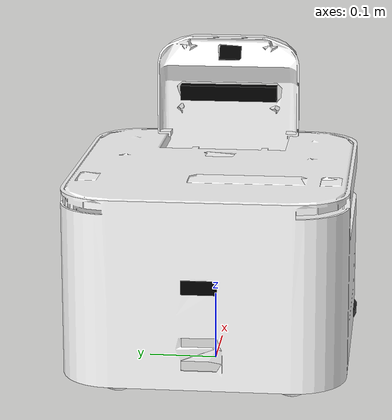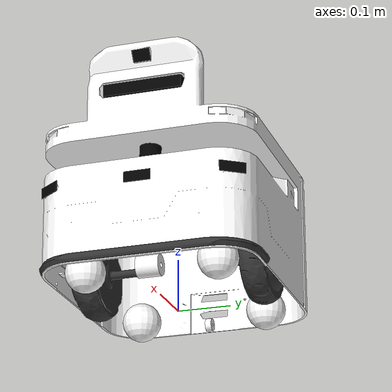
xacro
<?xml version="1.0" encoding="utf-8"?>
<robot name="rbn100_chassis" xmlns:xacro="http://ros.org/wiki/xacro">
  <xacro:include filename="materials.xacro"/>
  <xacro:include filename="rbn100.gazebo"/>

  <link name="base_footprint"/>

  <link name="base_link">
    <inertial>
      <origin xyz="0 0 0" rpy="0 0 0" />
      <mass value="2.9657" />
      <inertia ixx="0.08368808" ixy="-0.00029554" ixz="0.0027089"
                iyy="0.09677856" iyz="0.00015188"
                izz="0.13033017" />
    </inertial>
    <visual>
      <origin xyz="0 0 0" rpy="0 0 0" />
      <geometry>
        <mesh filename="package://rbn100_description/meshes/base_link.dae" />
      </geometry>
      <material name="">
        <color rgba="1 1 1 1" />
      </material>
    </visual>
    <collision>
      <origin xyz="0 0 0" rpy="0 0 0" />
      <geometry>
        <mesh filename="package://rbn100_description/meshes/base_link.dae" />
      </geometry>
    </collision>
  </link>
  <joint name="fixed" type="fixed">
    <origin xyz="0 0 0.117" rpy="0 0 0" />
    <parent link="base_footprint" />
    <child link="base_link" />
    <axis xyz="0 0 0" />
  </joint>

  <!-- wheel-->
  <xacro:macro name="wheel" params="pos flag_y">
    <link name="${pos}_wheel">
      <inertial>
        <origin xyz="-3.9818E-08 ${0.023375 * flag_y} -5.7134E-06" rpy="-1.570796 0 0" />
        <mass value="1.0829" />
        <inertia ixx="0.0021" ixy="0" ixz="0"
                 iyy="0.0021" iyz="0"
                 izz="0.0038" />
      </inertial>
      <visual>
        <origin xyz="0 0 0" rpy="0 0 0" />
        <geometry>
          <mesh filename="package://rbn100_description/meshes/${pos}_wheel.dae" />
        </geometry>
        <material name="">
          <color rgba="0.2 0.2 0.2 1" />
        </material>
      </visual>
      <collision>
        <origin xyz="-3.9818E-08 ${0.023375 * flag_y} -5.7134E-06" rpy="-1.570796 0 0" />
        <geometry>
          <cylinder radius="0.0845" length="0.045" />
        </geometry>
      </collision>
    </link>
    <joint name="${pos}_wheel_joint" type="continuous">
      <origin xyz="0 ${0.13755 * flag_y} -0.0325" rpy="0 0 0" />
      <parent link="base_link" />
      <child link="${pos}_wheel" />
      <axis xyz="0 1 0" />
    </joint>
  </xacro:macro>
  <xacro:wheel pos="left" flag_y="1"/>
  <xacro:wheel pos="right" flag_y="-1"/>

  <!-- 两个结构的转动惯量相对位置不均匀，导致vertical自己缓慢转动，没有转动惯量部件不会转动 -->
  <!--
    universal
   -->
  <!-- actual universal-->

  <!-- sphere universal -->
  <!--
    fixed joint with very small friction for vehicle to stand right still,
    and have very small effect on vehicle's move.
   -->
  <xacro:macro name="universal" params="pos flag_x flag_y" >
    <link name="universal_${pos}">
      <inertial>
        <origin xyz="0 0 0" rpy="0 0 0" />
        <mass value="0.0095091" />
        <inertia ixx="5.34886875e-06" ixy="0" ixz="0"
                 iyy="5.34886875e-06" iyz="0"
                 izz="5.34886875e-06" />
      </inertial>
      <visual>
        <origin xyz="0 0 0" rpy="0 0 0" />
        <geometry>
          <sphere radius="0.0375" />
        </geometry>
        <material name="">
          <color rgba="1 1 1 1" />
        </material>
      </visual>
      <collision>
        <origin xyz="0 0 0" rpy="0 0 0" />
        <geometry>
          <sphere radius="0.0375" />
        </geometry>
      </collision>
    </link>
    <joint name="universal_${pos}_joint" type="fixed">
      <origin xyz="${0.15248 * flag_x} ${-0.125 * flag_y} -0.0795" rpy="0 0 0" />
      <parent link="base_link" />
      <child link="universal_${pos}" />
    </joint>
  </xacro:macro>
  <xacro:universal pos="FR" flag_x="1" flag_y="1"/>
  <xacro:universal pos="FL" flag_x="1" flag_y="-1"/>
  <xacro:universal pos="BR" flag_x="-1" flag_y="1"/>
  <xacro:universal pos="BL" flag_x="-1" flag_y="-1"/>

  <!-- front caster -->
  <link name="front_caster">
    <inertial>
      <origin xyz="-2.77555756156289E-17 -5.80442675708945E-16 0" rpy="0 0 0" />
      <mass value="0.0506581815391354" />
      <inertia ixx="1.3188E-05" ixy="2.1816E-22" ixz="1.5232E-36"
               iyy="1.0765E-05" iyz="-1.6921E-20"
               izz="1.3188E-05" />
    </inertial>
    <visual>
      <origin xyz="0 0 0" rpy="0 0 0" />
      <geometry>
        <mesh filename="package://rbn100_description/meshes/front_caster.dae" />
      </geometry>
      <material name="">
        <color rgba="1 1 1 1" />
      </material>
    </visual>
    <collision>
      <origin xyz="0 0 0" rpy="0 0 0" />
      <geometry>
        <mesh filename="package://rbn100_description/meshes/front_caster.dae" />
      </geometry>
    </collision>
  </link>
  <joint name="front_caster_joint" type="continuous">
    <origin xyz="0.16 0 -0.083" rpy="0 0 0" />
    <parent link="base_link" />
    <child link="front_caster" />
    <axis xyz="0 1 0" />
  </joint>

  <!-- back caster -->
  <link name="back_caster">
    <inertial>
      <origin xyz="2.7756E-17 -5.8981E-16 0" rpy="0 0 0" />
      <mass value="0.0056549" />
      <inertia ixx="2.9759E-07" ixy="-7.1138E-24" ixz="-4.9678E-38"
               iyy="4.5946E-07" iyz="1.1303E-21"
               izz="2.9759E-07" />
    </inertial>
    <visual>
      <origin xyz="0 0 0" rpy="0 0 0" />
      <geometry>
        <mesh filename="package://rbn100_description/meshes/back_caster.dae" />
      </geometry>
      <material name="">
        <color rgba="1 1 1 1" />
      </material>
    </visual>
    <collision>
      <origin xyz="0 0 0" rpy="0 0 0" />
      <geometry>
        <mesh filename="package://rbn100_description/meshes/back_caster.dae" />
      </geometry>
    </collision>
  </link>
  <joint name="back_caster_joint" type="continuous">
    <origin xyz="-0.193 0 -0.0845" rpy="0 0 0" />
    <parent link="base_link" />
    <child link="back_caster" />
    <axis xyz="0 1 0" />
  </joint>

  <!-- tof -->
  <joint name="tof_joint" type="fixed">
    <origin xyz="0.209 -0.0011166 0.3104" rpy="0 0.54803 0" />
    <parent link="base_link" />
    <child link="tof_link" />
  </joint>
  <link name="tof_link">
    <visual>
      <origin xyz="0 0 0" rpy="0 0 0" />
      <geometry>
        <box size="0.003 0.033 0.023"/>
      </geometry>
      <material name="">
        <color rgba="0 0 0 1" />
      </material>
    </visual>
  </link>

  <!-- camera & imu -->
  <!-- center -->
  <joint name="stereo_camera_joint" type="fixed">
    <origin xyz="0.18936 0 0.249" rpy="0 0 0" />
    <parent link="base_link" />
    <child link="stereo_camera_link" />
  </joint>
  <link name="stereo_camera_link">
    <visual>
      <origin xyz="0.01 0 0" rpy="0 0 0" />
      <geometry>
        <box size="0.02 0.15 0.023"/>
      </geometry>
      <material name="">
        <color rgba="0 0 0 1" />
      </material>
    </visual>
  </link>

  <!-- camera -->
  <xacro:macro name="camera" params="name pos">
    <joint name="fisheye_${name}_joint" type="fixed">
      <origin xyz="0 ${pos * 0.035} 0" rpy="0 0 0" />
      <parent link="stereo_camera_link" />
      <child link="fisheye_${name}_frame" />
    </joint>
    <link name="fisheye_${name}_frame" />

    <joint name="fisheye_${name}_optical_joint" type="fixed">
      <origin xyz="0.02 0 0" rpy="0 0 0" />
      <parent link="fisheye_${name}_frame" />
      <child link="fisheye_${name}_optical_frame" />
    </joint>
    <link name="fisheye_${name}_optical_frame" />
  </xacro:macro>
  <xacro:camera name="left" pos="1" />
  <xacro:camera name="right" pos="-1" />

  <!-- imu -->
  <joint name="imu_joint" type="fixed">
    <origin xyz="0 0 0" rpy="0 0 0" />
    <parent link="stereo_camera_link" />
    <child link="imu" />
  </joint>
  <link name="imu"/>

  <!-- lidar -->
  <link name="lidar">
    <visual>
      <origin xyz="0 0 0" rpy="0 0 0" />
      <geometry>
        <cylinder radius="0.02" length="0.04323" />
      </geometry>
      <material name="">
        <color rgba="0 0 0 1" />
      </material>
    </visual>
  </link>
  <joint name="lidar_joint" type="fixed">
    <origin xyz="0.16001 0 0.124673" rpy="0 -0.0262 0" />
    <parent link="base_link" />
    <child link="lidar" />
    <axis xyz="0 0 0" />
  </joint>

  <!--
    sonar
  -->
  <xacro:macro name="sonar" params="pos">
  <link name="sonar_${pos}_link">
    <visual>
      <origin xyz="0 0 0" rpy="0 0 0" />
      <geometry>
        <box size="0.0015 0.05 0.02"/>
      </geometry>
      <material name="">
        <color rgba="0 0 0 1" />
      </material>
    </visual>
  </link>
  </xacro:macro>

  <joint name="back_sonar_joint" type="fixed">
    <origin xyz="-0.233 0 0.063" rpy="0 0 3.14" />
    <parent link="base_link" />
    <child link="sonar_back_link" />
    <axis xyz="0 0 0" />
  </joint>
  <xacro:sonar pos="back"/>

  <joint name="front_sonar_joint" type="fixed">
    <origin xyz="0.2316 0 0.063" rpy="0 0 0" />
    <parent link="base_link" />
    <child link="sonar_front_link" />
    <axis xyz="0 0 0" />
  </joint>
  <xacro:sonar pos="front"/>

  <joint name="sonar_FL_joint" type="fixed">
    <origin xyz="0.21648 0.17249 0.063" rpy="0 0 0.628" />
    <parent link="base_link" />
    <child link="sonar_FL_link" />
    <axis xyz="0 0 0" />
  </joint>
  <xacro:sonar pos="FL"/>

  <joint name="sonar_FR_joint" type="fixed">
    <origin xyz="0.21748 -0.17249 0.063" rpy="0 0 -0.628" />
    <parent link="base_link" />
    <child link="sonar_FR_link" />
    <axis xyz="0 0 0" />
  </joint>
  <xacro:sonar pos="FR"/>

  <!--
    cliff
   -->
  <xacro:macro name="cliff" params="pos flag_x flag_y" >
    <joint name="cliff_${pos}_joint" type="fixed">
      <origin xyz="${0.106 * flag_x} ${0.1865 * flag_y} -0.0609" rpy="0 1.570796 0" />
      <parent link="base_link" />
      <child link="cliff_${pos}_link" />
      <axis xyz="0 0 0" />
    </joint>
    <link name="cliff_${pos}_link">
      <visual>
        <origin xyz="0 0 0" rpy="0 0 0" />
        <geometry>
          <box size="0.0025 0.01 0.02"/>
        </geometry>
        <material name="">
          <color rgba="1 1 1 1" />
        </material>
      </visual>
    </link>
  </xacro:macro>
  <xacro:cliff pos="FL" flag_x="1" flag_y="1"/>
  <xacro:cliff pos="FR" flag_x="1" flag_y="-1"/>
  <xacro:cliff pos="BL" flag_x="-1" flag_y="1"/>
  <xacro:cliff pos="BR" flag_x="-1" flag_y="-1"/>

  <!-- bumper -->
  <joint name="bumper_joint" type="fixed">
    <origin xyz="0.1115 0.001 -0.077" rpy="0 0 0" />
    <parent link="base_link" />
    <child link="bumper" />
    <axis xyz="0 0 0" />
  </joint>
  <link name="bumper">
    <inertial>
      <origin xyz="0.094808 2.5935E-08 3.9562E-09" rpy="0 0 0" />
      <mass value="0.046523" />
      <inertia ixx="0.0010114" ixy="1.0666E-10" ixz="1.1467E-11"
               iyy="6.3521E-05" iyz="-4.0455E-11"
               izz="0.0010733" />
    </inertial>
    <visual>
      <origin xyz="0 0 0" rpy="0 0 0" />
      <geometry>
        <mesh filename="package://rbn100_description/meshes/bumper.dae" />
      </geometry>
      <material name="">
        <color rgba="0.2 0.2 0.2 1" />
      </material>
    </visual>
    <collision name="bumper">
      <origin xyz="0 0 0" rpy="0 0 0" />
      <geometry>
        <mesh filename="package://rbn100_description/meshes/bumper.dae" />
      </geometry>
    </collision>
  </link>

  <!-- transmission, parsed by ros_control -->
</robot>
